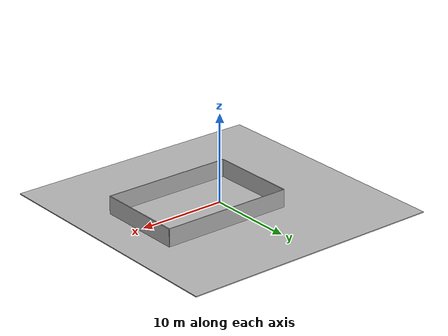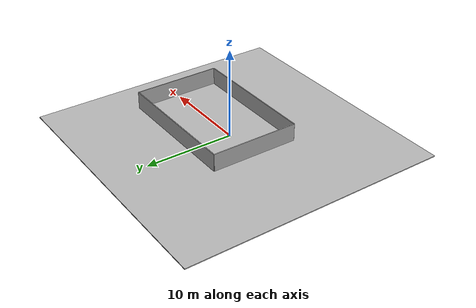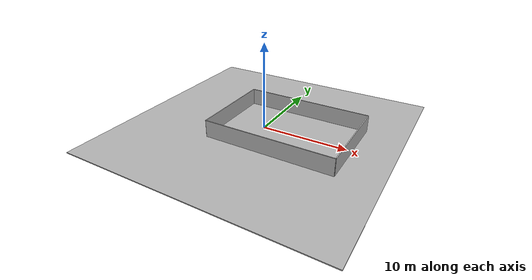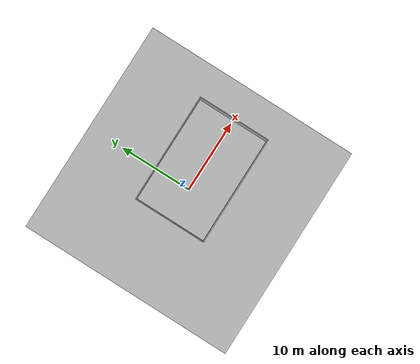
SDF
<sdf version="1.7">
 <world name="empty_human">
  <physics type="ode"><max_step_size>0.003</max_step_size><real_time_factor>1.0</real_time_factor></physics>
  <plugin name="gz::sim::systems::Physics" filename="gz-sim-physics-system"/>
  <plugin name="gz::sim::systems::UserCommands" filename="gz-sim-user-commands-system"/>
  <plugin name="gz::sim::systems::SceneBroadcaster" filename="gz-sim-scene-broadcaster-system"/>
  <plugin name="gz::sim::systems::Contact" filename="gz-sim-contact-system"/>
  <plugin name="gz::sim::systems::Sensors" filename="gz-sim-sensors-system">
   <render_engine>ogre2</render_engine>
  </plugin>
  <model name="ground_plane">
   <static>true</static>
   <link name="link">
    <collision name="collision">
     <pose>0 0 -0.05 0 0 0</pose>
     <geometry><box><size>30 30 0.1</size></box></geometry>
    </collision>
    <visual name="visual">
     <pose>0 0 -0.05 0 0 0</pose>
     <geometry><box><size>30 30 0.1</size></box></geometry>
     <material><ambient>0.7 0.7 0.7 1</ambient><diffuse>0.7 0.7 0.7 1</diffuse></material>
    </visual>
   </link>
  </model>
  <model name="wall_1">
   <pose>3 5 1 0 0 0</pose>
   <link name="link">
    <collision name="collision"><geometry><box><size>15 0.1 2</size></box></geometry></collision>
    <visual name="visual"><geometry><box><size>15 0.1 2</size></box></geometry></visual>
   </link>
  </model>
  <model name="wall_2">
   <pose>3 -5 1 0 0 0</pose>
   <link name="link">
    <collision name="collision"><geometry><box><size>15 0.1 2</size></box></geometry></collision>
    <visual name="visual"><geometry><box><size>15 0.1 2</size></box></geometry></visual>
   </link>
  </model>
  <model name="wall_3">
   <pose>-4.5 0 1 0 0 1.5708</pose>
   <link name="link">
    <collision name="collision"><geometry><box><size>10 0.1 2</size></box></geometry></collision>
    <visual name="visual"><geometry><box><size>10 0.1 2</size></box></geometry></visual>
   </link>
  </model>
  <model name="wall_4">
   <pose>10.5 0 1 0 0 1.5708</pose>
   <link name="link">
    <collision name="collision"><geometry><box><size>10 0.1 2</size></box></geometry></collision>
    <visual name="visual"><geometry><box><size>10 0.1 2</size></box></geometry></visual>
   </link>
  </model>
 </world>
</sdf>
